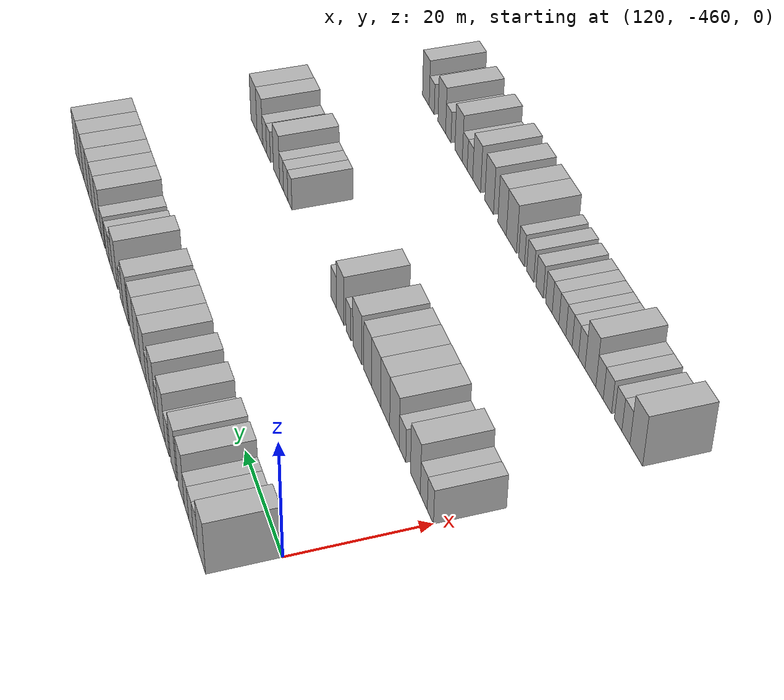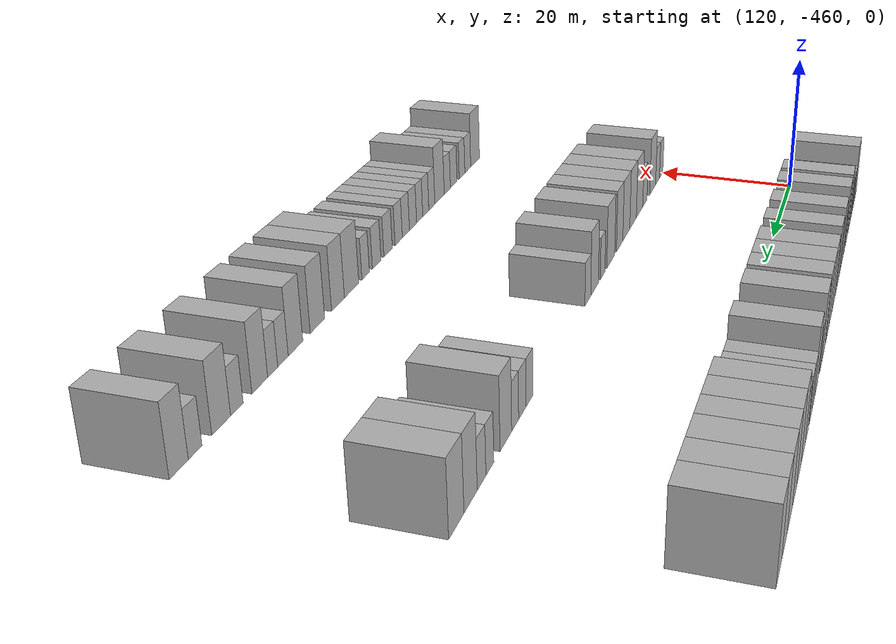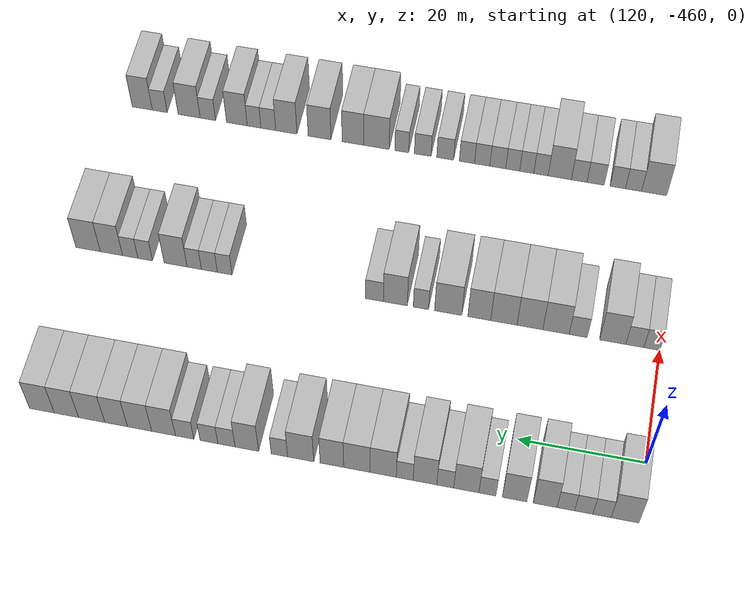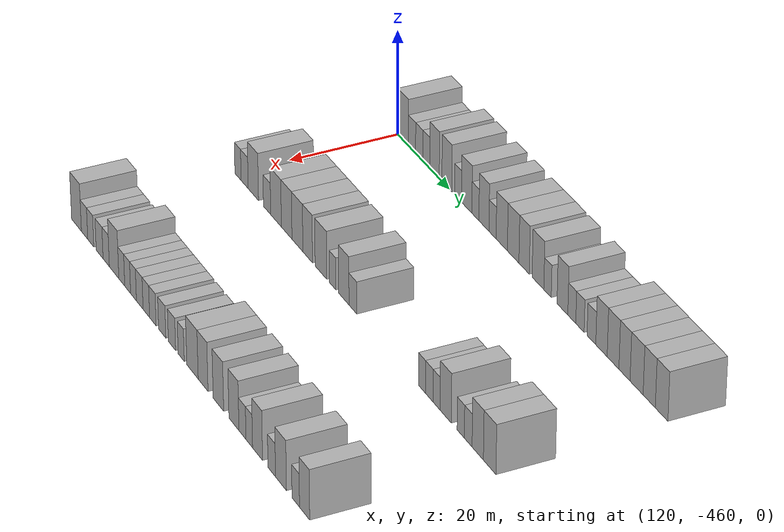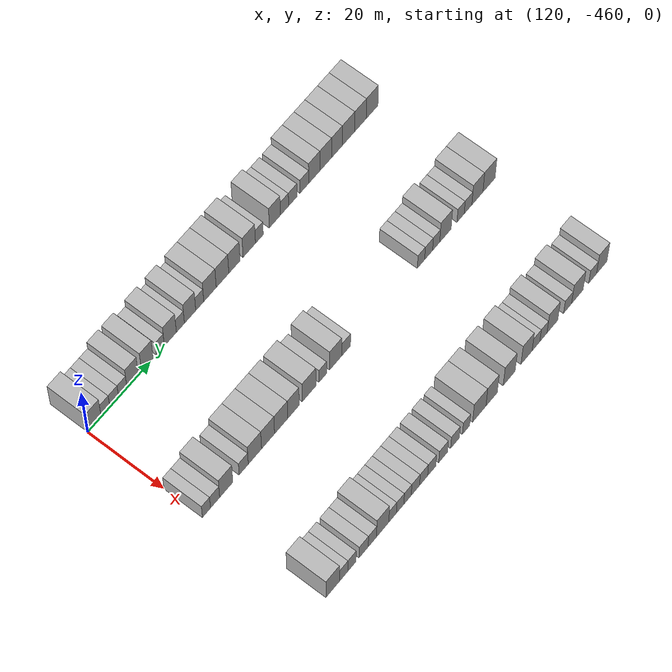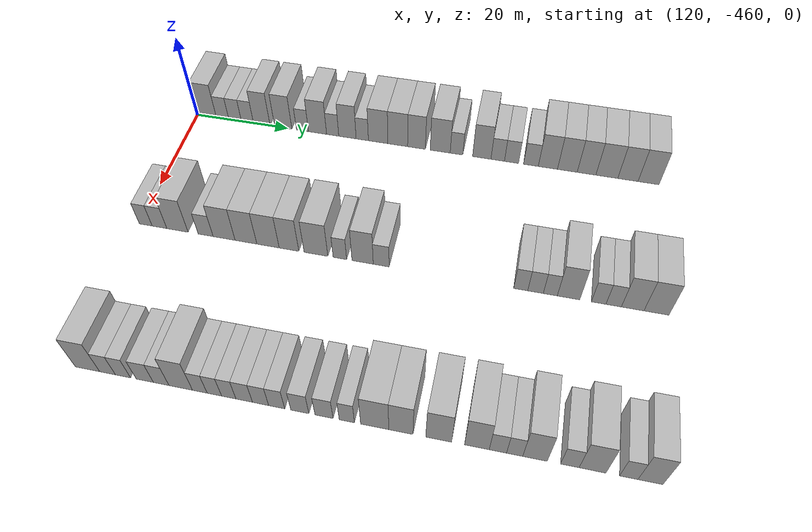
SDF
<sdf version="1.6">
 <world name="default">
  <model name="building_683">
   <static>1</static>
   <pose>115.0000 -457.8962 0 0.000000 0.000000 0.000000</pose>
   <link name="link">
    <pose>0 0 4.50 0 0 0</pose>
    <collision name="collision"><geometry><box><size>10.0000 4.2075 9.0000</size></box></geometry></collision>
    <visual name="visual">
     <cast_shadows>0</cast_shadows>
     <geometry><box><size>10.0000 4.2075 9.0000</size></box></geometry>
     <material>
      <script>
       <uri>model://HANNAS_wall/materials/scripts</uri>
       <uri>model://HANNAS_wall/materials/textures</uri>
       <name>vrc/HANNAS_wall</name>
      </script>
     </material>
    </visual>
   </link>
  </model>
  <model name="building_684">
   <static>1</static>
   <pose>115.0000 -454.4127 0 0.000000 0.000000 0.000000</pose>
   <link name="link">
    <pose>0 0 3.00 0 0 0</pose>
    <collision name="collision"><geometry><box><size>10.0000 2.7596 6.0000</size></box></geometry></collision>
    <visual name="visual">
     <cast_shadows>0</cast_shadows>
     <geometry><box><size>10.0000 2.7596 6.0000</size></box></geometry>
     <material>
      <script>
       <uri>model://HANNAS_wall/materials/scripts</uri>
       <uri>model://HANNAS_wall/materials/textures</uri>
       <name>vrc/HANNAS_wall</name>
      </script>
     </material>
    </visual>
   </link>
  </model>
  <model name="building_685">
   <static>1</static>
   <pose>115.0000 -451.6396 0 0.000000 0.000000 0.000000</pose>
   <link name="link">
    <pose>0 0 3.00 0 0 0</pose>
    <collision name="collision"><geometry><box><size>10.0000 2.7866 6.0000</size></box></geometry></collision>
    <visual name="visual">
     <cast_shadows>0</cast_shadows>
     <geometry><box><size>10.0000 2.7866 6.0000</size></box></geometry>
     <material>
      <script>
       <uri>model://HANNAS_wall/materials/scripts</uri>
       <uri>model://HANNAS_wall/materials/textures</uri>
       <name>vrc/HANNAS_wall</name>
      </script>
     </material>
    </visual>
   </link>
  </model>
  <model name="building_686">
   <static>1</static>
   <pose>115.0000 -448.9111 0 0.000000 0.000000 0.000000</pose>
   <link name="link">
    <pose>0 0 3.00 0 0 0</pose>
    <collision name="collision"><geometry><box><size>10.0000 2.6706 6.0000</size></box></geometry></collision>
    <visual name="visual">
     <cast_shadows>0</cast_shadows>
     <geometry><box><size>10.0000 2.6706 6.0000</size></box></geometry>
     <material>
      <script>
       <uri>model://HANNAS_wall/materials/scripts</uri>
       <uri>model://HANNAS_wall/materials/textures</uri>
       <name>vrc/HANNAS_wall</name>
      </script>
     </material>
    </visual>
   </link>
  </model>
  <model name="building_687">
   <static>1</static>
   <pose>115.0000 -445.7548 0 0.000000 0.000000 0.000000</pose>
   <link name="link">
    <pose>0 0 4.50 0 0 0</pose>
    <collision name="collision"><geometry><box><size>10.0000 3.6420 9.0000</size></box></geometry></collision>
    <visual name="visual">
     <cast_shadows>0</cast_shadows>
     <geometry><box><size>10.0000 3.6420 9.0000</size></box></geometry>
     <material>
      <script>
       <uri>model://HANNAS_wall/materials/scripts</uri>
       <uri>model://HANNAS_wall/materials/textures</uri>
       <name>vrc/HANNAS_wall</name>
      </script>
     </material>
    </visual>
   </link>
  </model>
  <model name="building_688">
   <static>1</static>
   <pose>115.0000 -441.0574 0 0.000000 0.000000 0.000000</pose>
   <link name="link">
    <pose>0 0 4.50 0 0 0</pose>
    <collision name="collision"><geometry><box><size>10.0000 3.7527 9.0000</size></box></geometry></collision>
    <visual name="visual">
     <cast_shadows>0</cast_shadows>
     <geometry><box><size>10.0000 3.7527 9.0000</size></box></geometry>
     <material>
      <script>
       <uri>model://HANNAS_wall/materials/scripts</uri>
       <uri>model://HANNAS_wall/materials/textures</uri>
       <name>vrc/HANNAS_wall</name>
      </script>
     </material>
    </visual>
   </link>
  </model>
  <model name="building_689">
   <static>1</static>
   <pose>115.0000 -436.8802 0 0.000000 0.000000 0.000000</pose>
   <link name="link">
    <pose>0 0 3.00 0 0 0</pose>
    <collision name="collision"><geometry><box><size>10.0000 2.6016 6.0000</size></box></geometry></collision>
    <visual name="visual">
     <cast_shadows>0</cast_shadows>
     <geometry><box><size>10.0000 2.6016 6.0000</size></box></geometry>
     <material>
      <script>
       <uri>model://HANNAS_wall/materials/scripts</uri>
       <uri>model://HANNAS_wall/materials/textures</uri>
       <name>vrc/HANNAS_wall</name>
      </script>
     </material>
    </visual>
   </link>
  </model>
  <model name="building_690">
   <static>1</static>
   <pose>115.0000 -433.6335 0 0.000000 0.000000 0.000000</pose>
   <link name="link">
    <pose>0 0 4.50 0 0 0</pose>
    <collision name="collision"><geometry><box><size>10.0000 3.8918 9.0000</size></box></geometry></collision>
    <visual name="visual">
     <cast_shadows>0</cast_shadows>
     <geometry><box><size>10.0000 3.8918 9.0000</size></box></geometry>
     <material>
      <script>
       <uri>model://HANNAS_wall/materials/scripts</uri>
       <uri>model://HANNAS_wall/materials/textures</uri>
       <name>vrc/HANNAS_wall</name>
      </script>
     </material>
    </visual>
   </link>
  </model>
  <model name="building_691">
   <static>1</static>
   <pose>115.0000 -430.3855 0 0.000000 0.000000 0.000000</pose>
   <link name="link">
    <pose>0 0 3.00 0 0 0</pose>
    <collision name="collision"><geometry><box><size>10.0000 2.6043 6.0000</size></box></geometry></collision>
    <visual name="visual">
     <cast_shadows>0</cast_shadows>
     <geometry><box><size>10.0000 2.6043 6.0000</size></box></geometry>
     <material>
      <script>
       <uri>model://HANNAS_wall/materials/scripts</uri>
       <uri>model://HANNAS_wall/materials/textures</uri>
       <name>vrc/HANNAS_wall</name>
      </script>
     </material>
    </visual>
   </link>
  </model>
  <model name="building_692">
   <static>1</static>
   <pose>115.0000 -427.2385 0 0.000000 0.000000 0.000000</pose>
   <link name="link">
    <pose>0 0 4.50 0 0 0</pose>
    <collision name="collision"><geometry><box><size>10.0000 3.6896 9.0000</size></box></geometry></collision>
    <visual name="visual">
     <cast_shadows>0</cast_shadows>
     <geometry><box><size>10.0000 3.6896 9.0000</size></box></geometry>
     <material>
      <script>
       <uri>model://HANNAS_wall/materials/scripts</uri>
       <uri>model://HANNAS_wall/materials/textures</uri>
       <name>vrc/HANNAS_wall</name>
      </script>
     </material>
    </visual>
   </link>
  </model>
  <model name="building_693">
   <static>1</static>
   <pose>115.0000 -424.0889 0 0.000000 0.000000 0.000000</pose>
   <link name="link">
    <pose>0 0 3.00 0 0 0</pose>
    <collision name="collision"><geometry><box><size>10.0000 2.6096 6.0000</size></box></geometry></collision>
    <visual name="visual">
     <cast_shadows>0</cast_shadows>
     <geometry><box><size>10.0000 2.6096 6.0000</size></box></geometry>
     <material>
      <script>
       <uri>model://HANNAS_wall/materials/scripts</uri>
       <uri>model://HANNAS_wall/materials/textures</uri>
       <name>vrc/HANNAS_wall</name>
      </script>
     </material>
    </visual>
   </link>
  </model>
  <model name="building_694">
   <static>1</static>
   <pose>115.0000 -420.7383 0 0.000000 0.000000 0.000000</pose>
   <link name="link">
    <pose>0 0 4.50 0 0 0</pose>
    <collision name="collision"><geometry><box><size>10.0000 4.0917 9.0000</size></box></geometry></collision>
    <visual name="visual">
     <cast_shadows>0</cast_shadows>
     <geometry><box><size>10.0000 4.0917 9.0000</size></box></geometry>
     <material>
      <script>
       <uri>model://HANNAS_wall/materials/scripts</uri>
       <uri>model://HANNAS_wall/materials/textures</uri>
       <name>vrc/HANNAS_wall</name>
      </script>
     </material>
    </visual>
   </link>
  </model>
  <model name="building_695">
   <static>1</static>
   <pose>115.0000 -416.6214 0 0.000000 0.000000 0.000000</pose>
   <link name="link">
    <pose>0 0 4.50 0 0 0</pose>
    <collision name="collision"><geometry><box><size>10.0000 4.1422 9.0000</size></box></geometry></collision>
    <visual name="visual">
     <cast_shadows>0</cast_shadows>
     <geometry><box><size>10.0000 4.1422 9.0000</size></box></geometry>
     <material>
      <script>
       <uri>model://HANNAS_wall/materials/scripts</uri>
       <uri>model://HANNAS_wall/materials/textures</uri>
       <name>vrc/HANNAS_wall</name>
      </script>
     </material>
    </visual>
   </link>
  </model>
  <model name="building_696">
   <static>1</static>
   <pose>115.0000 -412.7024 0 0.000000 0.000000 0.000000</pose>
   <link name="link">
    <pose>0 0 4.50 0 0 0</pose>
    <collision name="collision"><geometry><box><size>10.0000 3.6957 9.0000</size></box></geometry></collision>
    <visual name="visual">
     <cast_shadows>0</cast_shadows>
     <geometry><box><size>10.0000 3.6957 9.0000</size></box></geometry>
     <material>
      <script>
       <uri>model://HANNAS_wall/materials/scripts</uri>
       <uri>model://HANNAS_wall/materials/textures</uri>
       <name>vrc/HANNAS_wall</name>
      </script>
     </material>
    </visual>
   </link>
  </model>
  <model name="building_697">
   <static>1</static>
   <pose>115.0000 -407.7897 0 0.000000 0.000000 0.000000</pose>
   <link name="link">
    <pose>0 0 4.50 0 0 0</pose>
    <collision name="collision"><geometry><box><size>10.0000 4.1298 9.0000</size></box></geometry></collision>
    <visual name="visual">
     <cast_shadows>0</cast_shadows>
     <geometry><box><size>10.0000 4.1298 9.0000</size></box></geometry>
     <material>
      <script>
       <uri>model://HANNAS_wall/materials/scripts</uri>
       <uri>model://HANNAS_wall/materials/textures</uri>
       <name>vrc/HANNAS_wall</name>
      </script>
     </material>
    </visual>
   </link>
  </model>
  <model name="building_698">
   <static>1</static>
   <pose>115.0000 -404.4268 0 0.000000 0.000000 0.000000</pose>
   <link name="link">
    <pose>0 0 3.00 0 0 0</pose>
    <collision name="collision"><geometry><box><size>10.0000 2.5959 6.0000</size></box></geometry></collision>
    <visual name="visual">
     <cast_shadows>0</cast_shadows>
     <geometry><box><size>10.0000 2.5959 6.0000</size></box></geometry>
     <material>
      <script>
       <uri>model://HANNAS_wall/materials/scripts</uri>
       <uri>model://HANNAS_wall/materials/textures</uri>
       <name>vrc/HANNAS_wall</name>
      </script>
     </material>
    </visual>
   </link>
  </model>
  <model name="building_699">
   <static>1</static>
   <pose>115.0000 -399.2593 0 0.000000 0.000000 0.000000</pose>
   <link name="link">
    <pose>0 0 4.50 0 0 0</pose>
    <collision name="collision"><geometry><box><size>10.0000 3.7392 9.0000</size></box></geometry></collision>
    <visual name="visual">
     <cast_shadows>0</cast_shadows>
     <geometry><box><size>10.0000 3.7392 9.0000</size></box></geometry>
     <material>
      <script>
       <uri>model://HANNAS_wall/materials/scripts</uri>
       <uri>model://HANNAS_wall/materials/textures</uri>
       <name>vrc/HANNAS_wall</name>
      </script>
     </material>
    </visual>
   </link>
  </model>
  <model name="building_700">
   <static>1</static>
   <pose>115.0000 -396.0227 0 0.000000 0.000000 0.000000</pose>
   <link name="link">
    <pose>0 0 3.00 0 0 0</pose>
    <collision name="collision"><geometry><box><size>10.0000 2.7340 6.0000</size></box></geometry></collision>
    <visual name="visual">
     <cast_shadows>0</cast_shadows>
     <geometry><box><size>10.0000 2.7340 6.0000</size></box></geometry>
     <material>
      <script>
       <uri>model://HANNAS_wall/materials/scripts</uri>
       <uri>model://HANNAS_wall/materials/textures</uri>
       <name>vrc/HANNAS_wall</name>
      </script>
     </material>
    </visual>
   </link>
  </model>
  <model name="building_701">
   <static>1</static>
   <pose>115.0000 -393.2344 0 0.000000 0.000000 0.000000</pose>
   <link name="link">
    <pose>0 0 3.00 0 0 0</pose>
    <collision name="collision"><geometry><box><size>10.0000 2.8425 6.0000</size></box></geometry></collision>
    <visual name="visual">
     <cast_shadows>0</cast_shadows>
     <geometry><box><size>10.0000 2.8425 6.0000</size></box></geometry>
     <material>
      <script>
       <uri>model://HANNAS_wall/materials/scripts</uri>
       <uri>model://HANNAS_wall/materials/textures</uri>
       <name>vrc/HANNAS_wall</name>
      </script>
     </material>
    </visual>
   </link>
  </model>
  <model name="building_702">
   <static>1</static>
   <pose>115.0000 -389.3367 0 0.000000 0.000000 0.000000</pose>
   <link name="link">
    <pose>0 0 3.00 0 0 0</pose>
    <collision name="collision"><geometry><box><size>10.0000 2.9530 6.0000</size></box></geometry></collision>
    <visual name="visual">
     <cast_shadows>0</cast_shadows>
     <geometry><box><size>10.0000 2.9530 6.0000</size></box></geometry>
     <material>
      <script>
       <uri>model://HANNAS_wall/materials/scripts</uri>
       <uri>model://HANNAS_wall/materials/textures</uri>
       <name>vrc/HANNAS_wall</name>
      </script>
     </material>
    </visual>
   </link>
  </model>
  <model name="building_703">
   <static>1</static>
   <pose>115.0000 -385.9536 0 0.000000 0.000000 0.000000</pose>
   <link name="link">
    <pose>0 0 4.50 0 0 0</pose>
    <collision name="collision"><geometry><box><size>10.0000 3.8131 9.0000</size></box></geometry></collision>
    <visual name="visual">
     <cast_shadows>0</cast_shadows>
     <geometry><box><size>10.0000 3.8131 9.0000</size></box></geometry>
     <material>
      <script>
       <uri>model://HANNAS_wall/materials/scripts</uri>
       <uri>model://HANNAS_wall/materials/textures</uri>
       <name>vrc/HANNAS_wall</name>
      </script>
     </material>
    </visual>
   </link>
  </model>
  <model name="building_704">
   <static>1</static>
   <pose>115.0000 -382.0896 0 0.000000 0.000000 0.000000</pose>
   <link name="link">
    <pose>0 0 4.50 0 0 0</pose>
    <collision name="collision"><geometry><box><size>10.0000 3.9149 9.0000</size></box></geometry></collision>
    <visual name="visual">
     <cast_shadows>0</cast_shadows>
     <geometry><box><size>10.0000 3.9149 9.0000</size></box></geometry>
     <material>
      <script>
       <uri>model://HANNAS_wall/materials/scripts</uri>
       <uri>model://HANNAS_wall/materials/textures</uri>
       <name>vrc/HANNAS_wall</name>
      </script>
     </material>
    </visual>
   </link>
  </model>
  <model name="building_705">
   <static>1</static>
   <pose>115.0000 -378.2964 0 0.000000 0.000000 0.000000</pose>
   <link name="link">
    <pose>0 0 4.50 0 0 0</pose>
    <collision name="collision"><geometry><box><size>10.0000 3.6716 9.0000</size></box></geometry></collision>
    <visual name="visual">
     <cast_shadows>0</cast_shadows>
     <geometry><box><size>10.0000 3.6716 9.0000</size></box></geometry>
     <material>
      <script>
       <uri>model://HANNAS_wall/materials/scripts</uri>
       <uri>model://HANNAS_wall/materials/textures</uri>
       <name>vrc/HANNAS_wall</name>
      </script>
     </material>
    </visual>
   </link>
  </model>
  <model name="building_706">
   <static>1</static>
   <pose>115.0000 -374.3234 0 0.000000 0.000000 0.000000</pose>
   <link name="link">
    <pose>0 0 4.50 0 0 0</pose>
    <collision name="collision"><geometry><box><size>10.0000 4.2743 9.0000</size></box></geometry></collision>
    <visual name="visual">
     <cast_shadows>0</cast_shadows>
     <geometry><box><size>10.0000 4.2743 9.0000</size></box></geometry>
     <material>
      <script>
       <uri>model://HANNAS_wall/materials/scripts</uri>
       <uri>model://HANNAS_wall/materials/textures</uri>
       <name>vrc/HANNAS_wall</name>
      </script>
     </material>
    </visual>
   </link>
  </model>
  <model name="building_707">
   <static>1</static>
   <pose>115.0000 -370.2172 0 0.000000 0.000000 0.000000</pose>
   <link name="link">
    <pose>0 0 4.50 0 0 0</pose>
    <collision name="collision"><geometry><box><size>10.0000 3.9382 9.0000</size></box></geometry></collision>
    <visual name="visual">
     <cast_shadows>0</cast_shadows>
     <geometry><box><size>10.0000 3.9382 9.0000</size></box></geometry>
     <material>
      <script>
       <uri>model://HANNAS_wall/materials/scripts</uri>
       <uri>model://HANNAS_wall/materials/textures</uri>
       <name>vrc/HANNAS_wall</name>
      </script>
     </material>
    </visual>
   </link>
  </model>
  <model name="building_708">
   <static>1</static>
   <pose>115.0000 -366.2228 0 0.000000 0.000000 0.000000</pose>
   <link name="link">
    <pose>0 0 4.50 0 0 0</pose>
    <collision name="collision"><geometry><box><size>10.0000 4.0506 9.0000</size></box></geometry></collision>
    <visual name="visual">
     <cast_shadows>0</cast_shadows>
     <geometry><box><size>10.0000 4.0506 9.0000</size></box></geometry>
     <material>
      <script>
       <uri>model://HANNAS_wall/materials/scripts</uri>
       <uri>model://HANNAS_wall/materials/textures</uri>
       <name>vrc/HANNAS_wall</name>
      </script>
     </material>
    </visual>
   </link>
  </model>
  <model name="building_920">
   <static>1</static>
   <pose>145.0000 -458.7130 0 0.000000 0.000000 0.000000</pose>
   <link name="link">
    <pose>0 0 3.00 0 0 0</pose>
    <collision name="collision"><geometry><box><size>10.0000 2.5739 6.0000</size></box></geometry></collision>
    <visual name="visual">
     <cast_shadows>0</cast_shadows>
     <geometry><box><size>10.0000 2.5739 6.0000</size></box></geometry>
     <material>
      <script>
       <uri>model://HANNAS_wall/materials/scripts</uri>
       <uri>model://HANNAS_wall/materials/textures</uri>
       <name>vrc/HANNAS_wall</name>
      </script>
     </material>
    </visual>
   </link>
  </model>
  <model name="building_921">
   <static>1</static>
   <pose>145.0000 -455.9681 0 0.000000 0.000000 0.000000</pose>
   <link name="link">
    <pose>0 0 3.00 0 0 0</pose>
    <collision name="collision"><geometry><box><size>10.0000 2.9159 6.0000</size></box></geometry></collision>
    <visual name="visual">
     <cast_shadows>0</cast_shadows>
     <geometry><box><size>10.0000 2.9159 6.0000</size></box></geometry>
     <material>
      <script>
       <uri>model://HANNAS_wall/materials/scripts</uri>
       <uri>model://HANNAS_wall/materials/textures</uri>
       <name>vrc/HANNAS_wall</name>
      </script>
     </material>
    </visual>
   </link>
  </model>
  <model name="building_922">
   <static>1</static>
   <pose>145.0000 -452.3982 0 0.000000 0.000000 0.000000</pose>
   <link name="link">
    <pose>0 0 4.50 0 0 0</pose>
    <collision name="collision"><geometry><box><size>10.0000 4.2240 9.0000</size></box></geometry></collision>
    <visual name="visual">
     <cast_shadows>0</cast_shadows>
     <geometry><box><size>10.0000 4.2240 9.0000</size></box></geometry>
     <material>
      <script>
       <uri>model://HANNAS_wall/materials/scripts</uri>
       <uri>model://HANNAS_wall/materials/textures</uri>
       <name>vrc/HANNAS_wall</name>
      </script>
     </material>
    </visual>
   </link>
  </model>
  <model name="building_923">
   <static>1</static>
   <pose>145.0000 -446.8183 0 0.000000 0.000000 0.000000</pose>
   <link name="link">
    <pose>0 0 3.00 0 0 0</pose>
    <collision name="collision"><geometry><box><size>10.0000 2.9357 6.0000</size></box></geometry></collision>
    <visual name="visual">
     <cast_shadows>0</cast_shadows>
     <geometry><box><size>10.0000 2.9357 6.0000</size></box></geometry>
     <material>
      <script>
       <uri>model://HANNAS_wall/materials/scripts</uri>
       <uri>model://HANNAS_wall/materials/textures</uri>
       <name>vrc/HANNAS_wall</name>
      </script>
     </material>
    </visual>
   </link>
  </model>
  <model name="building_924">
   <static>1</static>
   <pose>145.0000 -443.2036 0 0.000000 0.000000 0.000000</pose>
   <link name="link">
    <pose>0 0 4.50 0 0 0</pose>
    <collision name="collision"><geometry><box><size>10.0000 4.2936 9.0000</size></box></geometry></collision>
    <visual name="visual">
     <cast_shadows>0</cast_shadows>
     <geometry><box><size>10.0000 4.2936 9.0000</size></box></geometry>
     <material>
      <script>
       <uri>model://HANNAS_wall/materials/scripts</uri>
       <uri>model://HANNAS_wall/materials/textures</uri>
       <name>vrc/HANNAS_wall</name>
      </script>
     </material>
    </visual>
   </link>
  </model>
  <model name="building_925">
   <static>1</static>
   <pose>145.0000 -438.9536 0 0.000000 0.000000 0.000000</pose>
   <link name="link">
    <pose>0 0 4.50 0 0 0</pose>
    <collision name="collision"><geometry><box><size>10.0000 4.2063 9.0000</size></box></geometry></collision>
    <visual name="visual">
     <cast_shadows>0</cast_shadows>
     <geometry><box><size>10.0000 4.2063 9.0000</size></box></geometry>
     <material>
      <script>
       <uri>model://HANNAS_wall/materials/scripts</uri>
       <uri>model://HANNAS_wall/materials/textures</uri>
       <name>vrc/HANNAS_wall</name>
      </script>
     </material>
    </visual>
   </link>
  </model>
  <model name="building_926">
   <static>1</static>
   <pose>145.0000 -434.6980 0 0.000000 0.000000 0.000000</pose>
   <link name="link">
    <pose>0 0 4.50 0 0 0</pose>
    <collision name="collision"><geometry><box><size>10.0000 4.3050 9.0000</size></box></geometry></collision>
    <visual name="visual">
     <cast_shadows>0</cast_shadows>
     <geometry><box><size>10.0000 4.3050 9.0000</size></box></geometry>
     <material>
      <script>
       <uri>model://HANNAS_wall/materials/scripts</uri>
       <uri>model://HANNAS_wall/materials/textures</uri>
       <name>vrc/HANNAS_wall</name>
      </script>
     </material>
    </visual>
   </link>
  </model>
  <model name="building_927">
   <static>1</static>
   <pose>145.0000 -430.6703 0 0.000000 0.000000 0.000000</pose>
   <link name="link">
    <pose>0 0 4.50 0 0 0</pose>
    <collision name="collision"><geometry><box><size>10.0000 3.7504 9.0000</size></box></geometry></collision>
    <visual name="visual">
     <cast_shadows>0</cast_shadows>
     <geometry><box><size>10.0000 3.7504 9.0000</size></box></geometry>
     <material>
      <script>
       <uri>model://HANNAS_wall/materials/scripts</uri>
       <uri>model://HANNAS_wall/materials/textures</uri>
       <name>vrc/HANNAS_wall</name>
      </script>
     </material>
    </visual>
   </link>
  </model>
  <model name="building_928">
   <static>1</static>
   <pose>145.0000 -425.5509 0 0.000000 0.000000 0.000000</pose>
   <link name="link">
    <pose>0 0 4.50 0 0 0</pose>
    <collision name="collision"><geometry><box><size>10.0000 4.4884 9.0000</size></box></geometry></collision>
    <visual name="visual">
     <cast_shadows>0</cast_shadows>
     <geometry><box><size>10.0000 4.4884 9.0000</size></box></geometry>
     <material>
      <script>
       <uri>model://HANNAS_wall/materials/scripts</uri>
       <uri>model://HANNAS_wall/materials/textures</uri>
       <name>vrc/HANNAS_wall</name>
      </script>
     </material>
    </visual>
   </link>
  </model>
  <model name="building_929">
   <static>1</static>
   <pose>145.0000 -421.0437 0 0.000000 0.000000 0.000000</pose>
   <link name="link">
    <pose>0 0 3.00 0 0 0</pose>
    <collision name="collision"><geometry><box><size>10.0000 2.5260 6.0000</size></box></geometry></collision>
    <visual name="visual">
     <cast_shadows>0</cast_shadows>
     <geometry><box><size>10.0000 2.5260 6.0000</size></box></geometry>
     <material>
      <script>
       <uri>model://HANNAS_wall/materials/scripts</uri>
       <uri>model://HANNAS_wall/materials/textures</uri>
       <name>vrc/HANNAS_wall</name>
      </script>
     </material>
    </visual>
   </link>
  </model>
  <model name="building_930">
   <static>1</static>
   <pose>145.0000 -416.8007 0 0.000000 0.000000 0.000000</pose>
   <link name="link">
    <pose>0 0 4.50 0 0 0</pose>
    <collision name="collision"><geometry><box><size>10.0000 3.9599 9.0000</size></box></geometry></collision>
    <visual name="visual">
     <cast_shadows>0</cast_shadows>
     <geometry><box><size>10.0000 3.9599 9.0000</size></box></geometry>
     <material>
      <script>
       <uri>model://HANNAS_wall/materials/scripts</uri>
       <uri>model://HANNAS_wall/materials/textures</uri>
       <name>vrc/HANNAS_wall</name>
      </script>
     </material>
    </visual>
   </link>
  </model>
  <model name="building_931">
   <static>1</static>
   <pose>145.0000 -413.3515 0 0.000000 0.000000 0.000000</pose>
   <link name="link">
    <pose>0 0 3.00 0 0 0</pose>
    <collision name="collision"><geometry><box><size>10.0000 2.9386 6.0000</size></box></geometry></collision>
    <visual name="visual">
     <cast_shadows>0</cast_shadows>
     <geometry><box><size>10.0000 2.9386 6.0000</size></box></geometry>
     <material>
      <script>
       <uri>model://HANNAS_wall/materials/scripts</uri>
       <uri>model://HANNAS_wall/materials/textures</uri>
       <name>vrc/HANNAS_wall</name>
      </script>
     </material>
    </visual>
   </link>
  </model>
  <model name="building_932">
   <static>1</static>
   <pose>145.0000 -388.1412 0 0.000000 0.000000 0.000000</pose>
   <link name="link">
    <pose>0 0 3.00 0 0 0</pose>
    <collision name="collision"><geometry><box><size>10.0000 2.4940 6.0000</size></box></geometry></collision>
    <visual name="visual">
     <cast_shadows>0</cast_shadows>
     <geometry><box><size>10.0000 2.4940 6.0000</size></box></geometry>
     <material>
      <script>
       <uri>model://HANNAS_wall/materials/scripts</uri>
       <uri>model://HANNAS_wall/materials/textures</uri>
       <name>vrc/HANNAS_wall</name>
      </script>
     </material>
    </visual>
   </link>
  </model>
  <model name="building_933">
   <static>1</static>
   <pose>145.0000 -385.5358 0 0.000000 0.000000 0.000000</pose>
   <link name="link">
    <pose>0 0 3.00 0 0 0</pose>
    <collision name="collision"><geometry><box><size>10.0000 2.7168 6.0000</size></box></geometry></collision>
    <visual name="visual">
     <cast_shadows>0</cast_shadows>
     <geometry><box><size>10.0000 2.7168 6.0000</size></box></geometry>
     <material>
      <script>
       <uri>model://HANNAS_wall/materials/scripts</uri>
       <uri>model://HANNAS_wall/materials/textures</uri>
       <name>vrc/HANNAS_wall</name>
      </script>
     </material>
    </visual>
   </link>
  </model>
  <model name="building_934">
   <static>1</static>
   <pose>145.0000 -382.9551 0 0.000000 0.000000 0.000000</pose>
   <link name="link">
    <pose>0 0 3.00 0 0 0</pose>
    <collision name="collision"><geometry><box><size>10.0000 2.4446 6.0000</size></box></geometry></collision>
    <visual name="visual">
     <cast_shadows>0</cast_shadows>
     <geometry><box><size>10.0000 2.4446 6.0000</size></box></geometry>
     <material>
      <script>
       <uri>model://HANNAS_wall/materials/scripts</uri>
       <uri>model://HANNAS_wall/materials/textures</uri>
       <name>vrc/HANNAS_wall</name>
      </script>
     </material>
    </visual>
   </link>
  </model>
  <model name="building_935">
   <static>1</static>
   <pose>145.0000 -379.7747 0 0.000000 0.000000 0.000000</pose>
   <link name="link">
    <pose>0 0 4.50 0 0 0</pose>
    <collision name="collision"><geometry><box><size>10.0000 3.9162 9.0000</size></box></geometry></collision>
    <visual name="visual">
     <cast_shadows>0</cast_shadows>
     <geometry><box><size>10.0000 3.9162 9.0000</size></box></geometry>
     <material>
      <script>
       <uri>model://HANNAS_wall/materials/scripts</uri>
       <uri>model://HANNAS_wall/materials/textures</uri>
       <name>vrc/HANNAS_wall</name>
      </script>
     </material>
    </visual>
   </link>
  </model>
  <model name="building_936">
   <static>1</static>
   <pose>145.0000 -374.5658 0 0.000000 0.000000 0.000000</pose>
   <link name="link">
    <pose>0 0 3.00 0 0 0</pose>
    <collision name="collision"><geometry><box><size>10.0000 2.5016 6.0000</size></box></geometry></collision>
    <visual name="visual">
     <cast_shadows>0</cast_shadows>
     <geometry><box><size>10.0000 2.5016 6.0000</size></box></geometry>
     <material>
      <script>
       <uri>model://HANNAS_wall/materials/scripts</uri>
       <uri>model://HANNAS_wall/materials/textures</uri>
       <name>vrc/HANNAS_wall</name>
      </script>
     </material>
    </visual>
   </link>
  </model>
  <model name="building_937">
   <static>1</static>
   <pose>145.0000 -371.9935 0 0.000000 0.000000 0.000000</pose>
   <link name="link">
    <pose>0 0 3.00 0 0 0</pose>
    <collision name="collision"><geometry><box><size>10.0000 2.6430 6.0000</size></box></geometry></collision>
    <visual name="visual">
     <cast_shadows>0</cast_shadows>
     <geometry><box><size>10.0000 2.6430 6.0000</size></box></geometry>
     <material>
      <script>
       <uri>model://HANNAS_wall/materials/scripts</uri>
       <uri>model://HANNAS_wall/materials/textures</uri>
       <name>vrc/HANNAS_wall</name>
      </script>
     </material>
    </visual>
   </link>
  </model>
  <model name="building_938">
   <static>1</static>
   <pose>145.0000 -368.7481 0 0.000000 0.000000 0.000000</pose>
   <link name="link">
    <pose>0 0 4.50 0 0 0</pose>
    <collision name="collision"><geometry><box><size>10.0000 3.8477 9.0000</size></box></geometry></collision>
    <visual name="visual">
     <cast_shadows>0</cast_shadows>
     <geometry><box><size>10.0000 3.8477 9.0000</size></box></geometry>
     <material>
      <script>
       <uri>model://HANNAS_wall/materials/scripts</uri>
       <uri>model://HANNAS_wall/materials/textures</uri>
       <name>vrc/HANNAS_wall</name>
      </script>
     </material>
    </visual>
   </link>
  </model>
  <model name="building_939">
   <static>1</static>
   <pose>145.0000 -364.7167 0 0.000000 0.000000 0.000000</pose>
   <link name="link">
    <pose>0 0 4.50 0 0 0</pose>
    <collision name="collision"><geometry><box><size>10.0000 4.2152 9.0000</size></box></geometry></collision>
    <visual name="visual">
     <cast_shadows>0</cast_shadows>
     <geometry><box><size>10.0000 4.2152 9.0000</size></box></geometry>
     <material>
      <script>
       <uri>model://HANNAS_wall/materials/scripts</uri>
       <uri>model://HANNAS_wall/materials/textures</uri>
       <name>vrc/HANNAS_wall</name>
      </script>
     </material>
    </visual>
   </link>
  </model>
  <model name="building_1140">
   <static>1</static>
   <pose>175.0000 -455.8539 0 0.000000 0.000000 0.000000</pose>
   <link name="link">
    <pose>0 0 4.50 0 0 0</pose>
    <collision name="collision"><geometry><box><size>10.0000 4.2922 9.0000</size></box></geometry></collision>
    <visual name="visual">
     <cast_shadows>0</cast_shadows>
     <geometry><box><size>10.0000 4.2922 9.0000</size></box></geometry>
     <material>
      <script>
       <uri>model://HANNAS_wall/materials/scripts</uri>
       <uri>model://HANNAS_wall/materials/textures</uri>
       <name>vrc/HANNAS_wall</name>
      </script>
     </material>
    </visual>
   </link>
  </model>
  <model name="building_1141">
   <static>1</static>
   <pose>175.0000 -452.3269 0 0.000000 0.000000 0.000000</pose>
   <link name="link">
    <pose>0 0 3.00 0 0 0</pose>
    <collision name="collision"><geometry><box><size>10.0000 2.7619 6.0000</size></box></geometry></collision>
    <visual name="visual">
     <cast_shadows>0</cast_shadows>
     <geometry><box><size>10.0000 2.7619 6.0000</size></box></geometry>
     <material>
      <script>
       <uri>model://HANNAS_wall/materials/scripts</uri>
       <uri>model://HANNAS_wall/materials/textures</uri>
       <name>vrc/HANNAS_wall</name>
      </script>
     </material>
    </visual>
   </link>
  </model>
  <model name="building_1142">
   <static>1</static>
   <pose>175.0000 -449.6336 0 0.000000 0.000000 0.000000</pose>
   <link name="link">
    <pose>0 0 3.00 0 0 0</pose>
    <collision name="collision"><geometry><box><size>10.0000 2.6246 6.0000</size></box></geometry></collision>
    <visual name="visual">
     <cast_shadows>0</cast_shadows>
     <geometry><box><size>10.0000 2.6246 6.0000</size></box></geometry>
     <material>
      <script>
       <uri>model://HANNAS_wall/materials/scripts</uri>
       <uri>model://HANNAS_wall/materials/textures</uri>
       <name>vrc/HANNAS_wall</name>
      </script>
     </material>
    </visual>
   </link>
  </model>
  <model name="building_1143">
   <static>1</static>
   <pose>175.0000 -445.8392 0 0.000000 0.000000 0.000000</pose>
   <link name="link">
    <pose>0 0 3.00 0 0 0</pose>
    <collision name="collision"><geometry><box><size>10.0000 2.9641 6.0000</size></box></geometry></collision>
    <visual name="visual">
     <cast_shadows>0</cast_shadows>
     <geometry><box><size>10.0000 2.9641 6.0000</size></box></geometry>
     <material>
      <script>
       <uri>model://HANNAS_wall/materials/scripts</uri>
       <uri>model://HANNAS_wall/materials/textures</uri>
       <name>vrc/HANNAS_wall</name>
      </script>
     </material>
    </visual>
   </link>
  </model>
  <model name="building_1144">
   <static>1</static>
   <pose>175.0000 -443.0169 0 0.000000 0.000000 0.000000</pose>
   <link name="link">
    <pose>0 0 3.00 0 0 0</pose>
    <collision name="collision"><geometry><box><size>10.0000 2.6806 6.0000</size></box></geometry></collision>
    <visual name="visual">
     <cast_shadows>0</cast_shadows>
     <geometry><box><size>10.0000 2.6806 6.0000</size></box></geometry>
     <material>
      <script>
       <uri>model://HANNAS_wall/materials/scripts</uri>
       <uri>model://HANNAS_wall/materials/textures</uri>
       <name>vrc/HANNAS_wall</name>
      </script>
     </material>
    </visual>
   </link>
  </model>
  <model name="building_1145">
   <static>1</static>
   <pose>175.0000 -439.6693 0 0.000000 0.000000 0.000000</pose>
   <link name="link">
    <pose>0 0 4.50 0 0 0</pose>
    <collision name="collision"><geometry><box><size>10.0000 4.0146 9.0000</size></box></geometry></collision>
    <visual name="visual">
     <cast_shadows>0</cast_shadows>
     <geometry><box><size>10.0000 4.0146 9.0000</size></box></geometry>
     <material>
      <script>
       <uri>model://HANNAS_wall/materials/scripts</uri>
       <uri>model://HANNAS_wall/materials/textures</uri>
       <name>vrc/HANNAS_wall</name>
      </script>
     </material>
    </visual>
   </link>
  </model>
  <model name="building_1146">
   <static>1</static>
   <pose>175.0000 -436.4201 0 0.000000 0.000000 0.000000</pose>
   <link name="link">
    <pose>0 0 3.00 0 0 0</pose>
    <collision name="collision"><geometry><box><size>10.0000 2.4837 6.0000</size></box></geometry></collision>
    <visual name="visual">
     <cast_shadows>0</cast_shadows>
     <geometry><box><size>10.0000 2.4837 6.0000</size></box></geometry>
     <material>
      <script>
       <uri>model://HANNAS_wall/materials/scripts</uri>
       <uri>model://HANNAS_wall/materials/textures</uri>
       <name>vrc/HANNAS_wall</name>
      </script>
     </material>
    </visual>
   </link>
  </model>
  <model name="building_1147">
   <static>1</static>
   <pose>175.0000 -433.9555 0 0.000000 0.000000 0.000000</pose>
   <link name="link">
    <pose>0 0 3.00 0 0 0</pose>
    <collision name="collision"><geometry><box><size>10.0000 2.4454 6.0000</size></box></geometry></collision>
    <visual name="visual">
     <cast_shadows>0</cast_shadows>
     <geometry><box><size>10.0000 2.4454 6.0000</size></box></geometry>
     <material>
      <script>
       <uri>model://HANNAS_wall/materials/scripts</uri>
       <uri>model://HANNAS_wall/materials/textures</uri>
       <name>vrc/HANNAS_wall</name>
      </script>
     </material>
    </visual>
   </link>
  </model>
  <model name="building_1148">
   <static>1</static>
   <pose>175.0000 -431.5236 0 0.000000 0.000000 0.000000</pose>
   <link name="link">
    <pose>0 0 3.00 0 0 0</pose>
    <collision name="collision"><geometry><box><size>10.0000 2.4184 6.0000</size></box></geometry></collision>
    <visual name="visual">
     <cast_shadows>0</cast_shadows>
     <geometry><box><size>10.0000 2.4184 6.0000</size></box></geometry>
     <material>
      <script>
       <uri>model://HANNAS_wall/materials/scripts</uri>
       <uri>model://HANNAS_wall/materials/textures</uri>
       <name>vrc/HANNAS_wall</name>
      </script>
     </material>
    </visual>
   </link>
  </model>
  <model name="building_1149">
   <static>1</static>
   <pose>175.0000 -428.9366 0 0.000000 0.000000 0.000000</pose>
   <link name="link">
    <pose>0 0 3.00 0 0 0</pose>
    <collision name="collision"><geometry><box><size>10.0000 2.7557 6.0000</size></box></geometry></collision>
    <visual name="visual">
     <cast_shadows>0</cast_shadows>
     <geometry><box><size>10.0000 2.7557 6.0000</size></box></geometry>
     <material>
      <script>
       <uri>model://HANNAS_wall/materials/scripts</uri>
       <uri>model://HANNAS_wall/materials/textures</uri>
       <name>vrc/HANNAS_wall</name>
      </script>
     </material>
    </visual>
   </link>
  </model>
  <model name="building_1150">
   <static>1</static>
   <pose>175.0000 -426.2199 0 0.000000 0.000000 0.000000</pose>
   <link name="link">
    <pose>0 0 3.00 0 0 0</pose>
    <collision name="collision"><geometry><box><size>10.0000 2.6776 6.0000</size></box></geometry></collision>
    <visual name="visual">
     <cast_shadows>0</cast_shadows>
     <geometry><box><size>10.0000 2.6776 6.0000</size></box></geometry>
     <material>
      <script>
       <uri>model://HANNAS_wall/materials/scripts</uri>
       <uri>model://HANNAS_wall/materials/textures</uri>
       <name>vrc/HANNAS_wall</name>
      </script>
     </material>
    </visual>
   </link>
  </model>
  <model name="building_1151">
   <static>1</static>
   <pose>175.0000 -423.5518 0 0.000000 0.000000 0.000000</pose>
   <link name="link">
    <pose>0 0 3.00 0 0 0</pose>
    <collision name="collision"><geometry><box><size>10.0000 2.6586 6.0000</size></box></geometry></collision>
    <visual name="visual">
     <cast_shadows>0</cast_shadows>
     <geometry><box><size>10.0000 2.6586 6.0000</size></box></geometry>
     <material>
      <script>
       <uri>model://HANNAS_wall/materials/scripts</uri>
       <uri>model://HANNAS_wall/materials/textures</uri>
       <name>vrc/HANNAS_wall</name>
      </script>
     </material>
    </visual>
   </link>
  </model>
  <model name="building_1152">
   <static>1</static>
   <pose>175.0000 -419.7477 0 0.000000 0.000000 0.000000</pose>
   <link name="link">
    <pose>0 0 3.00 0 0 0</pose>
    <collision name="collision"><geometry><box><size>10.0000 2.9495 6.0000</size></box></geometry></collision>
    <visual name="visual">
     <cast_shadows>0</cast_shadows>
     <geometry><box><size>10.0000 2.9495 6.0000</size></box></geometry>
     <material>
      <script>
       <uri>model://HANNAS_wall/materials/scripts</uri>
       <uri>model://HANNAS_wall/materials/textures</uri>
       <name>vrc/HANNAS_wall</name>
      </script>
     </material>
    </visual>
   </link>
  </model>
  <model name="building_1153">
   <static>1</static>
   <pose>175.0000 -415.8087 0 0.000000 0.000000 0.000000</pose>
   <link name="link">
    <pose>0 0 3.00 0 0 0</pose>
    <collision name="collision"><geometry><box><size>10.0000 2.9286 6.0000</size></box></geometry></collision>
    <visual name="visual">
     <cast_shadows>0</cast_shadows>
     <geometry><box><size>10.0000 2.9286 6.0000</size></box></geometry>
     <material>
      <script>
       <uri>model://HANNAS_wall/materials/scripts</uri>
       <uri>model://HANNAS_wall/materials/textures</uri>
       <name>vrc/HANNAS_wall</name>
      </script>
     </material>
    </visual>
   </link>
  </model>
  <model name="building_1154">
   <static>1</static>
   <pose>175.0000 -412.1235 0 0.000000 0.000000 0.000000</pose>
   <link name="link">
    <pose>0 0 3.00 0 0 0</pose>
    <collision name="collision"><geometry><box><size>10.0000 2.4419 6.0000</size></box></geometry></collision>
    <visual name="visual">
     <cast_shadows>0</cast_shadows>
     <geometry><box><size>10.0000 2.4419 6.0000</size></box></geometry>
     <material>
      <script>
       <uri>model://HANNAS_wall/materials/scripts</uri>
       <uri>model://HANNAS_wall/materials/textures</uri>
       <name>vrc/HANNAS_wall</name>
      </script>
     </material>
    </visual>
   </link>
  </model>
  <model name="building_1155">
   <static>1</static>
   <pose>175.0000 -407.6592 0 0.000000 0.000000 0.000000</pose>
   <link name="link">
    <pose>0 0 4.50 0 0 0</pose>
    <collision name="collision"><geometry><box><size>10.0000 4.4867 9.0000</size></box></geometry></collision>
    <visual name="visual">
     <cast_shadows>0</cast_shadows>
     <geometry><box><size>10.0000 4.4867 9.0000</size></box></geometry>
     <material>
      <script>
       <uri>model://HANNAS_wall/materials/scripts</uri>
       <uri>model://HANNAS_wall/materials/textures</uri>
       <name>vrc/HANNAS_wall</name>
      </script>
     </material>
    </visual>
   </link>
  </model>
  <model name="building_1156">
   <static>1</static>
   <pose>175.0000 -403.4995 0 0.000000 0.000000 0.000000</pose>
   <link name="link">
    <pose>0 0 4.50 0 0 0</pose>
    <collision name="collision"><geometry><box><size>10.0000 3.8328 9.0000</size></box></geometry></collision>
    <visual name="visual">
     <cast_shadows>0</cast_shadows>
     <geometry><box><size>10.0000 3.8328 9.0000</size></box></geometry>
     <material>
      <script>
       <uri>model://HANNAS_wall/materials/scripts</uri>
       <uri>model://HANNAS_wall/materials/textures</uri>
       <name>vrc/HANNAS_wall</name>
      </script>
     </material>
    </visual>
   </link>
  </model>
  <model name="building_1157">
   <static>1</static>
   <pose>175.0000 -397.5578 0 0.000000 0.000000 0.000000</pose>
   <link name="link">
    <pose>0 0 4.50 0 0 0</pose>
    <collision name="collision"><geometry><box><size>10.0000 4.0506 9.0000</size></box></geometry></collision>
    <visual name="visual">
     <cast_shadows>0</cast_shadows>
     <geometry><box><size>10.0000 4.0506 9.0000</size></box></geometry>
     <material>
      <script>
       <uri>model://HANNAS_wall/materials/scripts</uri>
       <uri>model://HANNAS_wall/materials/textures</uri>
       <name>vrc/HANNAS_wall</name>
      </script>
     </material>
    </visual>
   </link>
  </model>
  <model name="building_1158">
   <static>1</static>
   <pose>175.0000 -391.6283 0 0.000000 0.000000 0.000000</pose>
   <link name="link">
    <pose>0 0 4.50 0 0 0</pose>
    <collision name="collision"><geometry><box><size>10.0000 3.8083 9.0000</size></box></geometry></collision>
    <visual name="visual">
     <cast_shadows>0</cast_shadows>
     <geometry><box><size>10.0000 3.8083 9.0000</size></box></geometry>
     <material>
      <script>
       <uri>model://HANNAS_wall/materials/scripts</uri>
       <uri>model://HANNAS_wall/materials/textures</uri>
       <name>vrc/HANNAS_wall</name>
      </script>
     </material>
    </visual>
   </link>
  </model>
  <model name="building_1159">
   <static>1</static>
   <pose>175.0000 -388.3992 0 0.000000 0.000000 0.000000</pose>
   <link name="link">
    <pose>0 0 3.00 0 0 0</pose>
    <collision name="collision"><geometry><box><size>10.0000 2.6499 6.0000</size></box></geometry></collision>
    <visual name="visual">
     <cast_shadows>0</cast_shadows>
     <geometry><box><size>10.0000 2.6499 6.0000</size></box></geometry>
     <material>
      <script>
       <uri>model://HANNAS_wall/materials/scripts</uri>
       <uri>model://HANNAS_wall/materials/textures</uri>
       <name>vrc/HANNAS_wall</name>
      </script>
     </material>
    </visual>
   </link>
  </model>
  <model name="building_1160">
   <static>1</static>
   <pose>175.0000 -385.8439 0 0.000000 0.000000 0.000000</pose>
   <link name="link">
    <pose>0 0 3.00 0 0 0</pose>
    <collision name="collision"><geometry><box><size>10.0000 2.4606 6.0000</size></box></geometry></collision>
    <visual name="visual">
     <cast_shadows>0</cast_shadows>
     <geometry><box><size>10.0000 2.4606 6.0000</size></box></geometry>
     <material>
      <script>
       <uri>model://HANNAS_wall/materials/scripts</uri>
       <uri>model://HANNAS_wall/materials/textures</uri>
       <name>vrc/HANNAS_wall</name>
      </script>
     </material>
    </visual>
   </link>
  </model>
  <model name="building_1161">
   <static>1</static>
   <pose>175.0000 -382.7539 0 0.000000 0.000000 0.000000</pose>
   <link name="link">
    <pose>0 0 4.50 0 0 0</pose>
    <collision name="collision"><geometry><box><size>10.0000 3.7195 9.0000</size></box></geometry></collision>
    <visual name="visual">
     <cast_shadows>0</cast_shadows>
     <geometry><box><size>10.0000 3.7195 9.0000</size></box></geometry>
     <material>
      <script>
       <uri>model://HANNAS_wall/materials/scripts</uri>
       <uri>model://HANNAS_wall/materials/textures</uri>
       <name>vrc/HANNAS_wall</name>
      </script>
     </material>
    </visual>
   </link>
  </model>
  <model name="building_1162">
   <static>1</static>
   <pose>175.0000 -377.5072 0 0.000000 0.000000 0.000000</pose>
   <link name="link">
    <pose>0 0 3.00 0 0 0</pose>
    <collision name="collision"><geometry><box><size>10.0000 2.7739 6.0000</size></box></geometry></collision>
    <visual name="visual">
     <cast_shadows>0</cast_shadows>
     <geometry><box><size>10.0000 2.7739 6.0000</size></box></geometry>
     <material>
      <script>
       <uri>model://HANNAS_wall/materials/scripts</uri>
       <uri>model://HANNAS_wall/materials/textures</uri>
       <name>vrc/HANNAS_wall</name>
      </script>
     </material>
    </visual>
   </link>
  </model>
  <model name="building_1163">
   <static>1</static>
   <pose>175.0000 -374.1261 0 0.000000 0.000000 0.000000</pose>
   <link name="link">
    <pose>0 0 4.50 0 0 0</pose>
    <collision name="collision"><geometry><box><size>10.0000 3.9883 9.0000</size></box></geometry></collision>
    <visual name="visual">
     <cast_shadows>0</cast_shadows>
     <geometry><box><size>10.0000 3.9883 9.0000</size></box></geometry>
     <material>
      <script>
       <uri>model://HANNAS_wall/materials/scripts</uri>
       <uri>model://HANNAS_wall/materials/textures</uri>
       <name>vrc/HANNAS_wall</name>
      </script>
     </material>
    </visual>
   </link>
  </model>
  <model name="building_1164">
   <static>1</static>
   <pose>175.0000 -368.7784 0 0.000000 0.000000 0.000000</pose>
   <link name="link">
    <pose>0 0 3.00 0 0 0</pose>
    <collision name="collision"><geometry><box><size>10.0000 2.7072 6.0000</size></box></geometry></collision>
    <visual name="visual">
     <cast_shadows>0</cast_shadows>
     <geometry><box><size>10.0000 2.7072 6.0000</size></box></geometry>
     <material>
      <script>
       <uri>model://HANNAS_wall/materials/scripts</uri>
       <uri>model://HANNAS_wall/materials/textures</uri>
       <name>vrc/HANNAS_wall</name>
      </script>
     </material>
    </visual>
   </link>
  </model>
  <model name="building_1165">
   <static>1</static>
   <pose>175.0000 -365.6022 0 0.000000 0.000000 0.000000</pose>
   <link name="link">
    <pose>0 0 4.50 0 0 0</pose>
    <collision name="collision"><geometry><box><size>10.0000 3.6450 9.0000</size></box></geometry></collision>
    <visual name="visual">
     <cast_shadows>0</cast_shadows>
     <geometry><box><size>10.0000 3.6450 9.0000</size></box></geometry>
     <material>
      <script>
       <uri>model://HANNAS_wall/materials/scripts</uri>
       <uri>model://HANNAS_wall/materials/textures</uri>
       <name>vrc/HANNAS_wall</name>
      </script>
     </material>
    </visual>
   </link>
  </model>
 </world>
</sdf>
